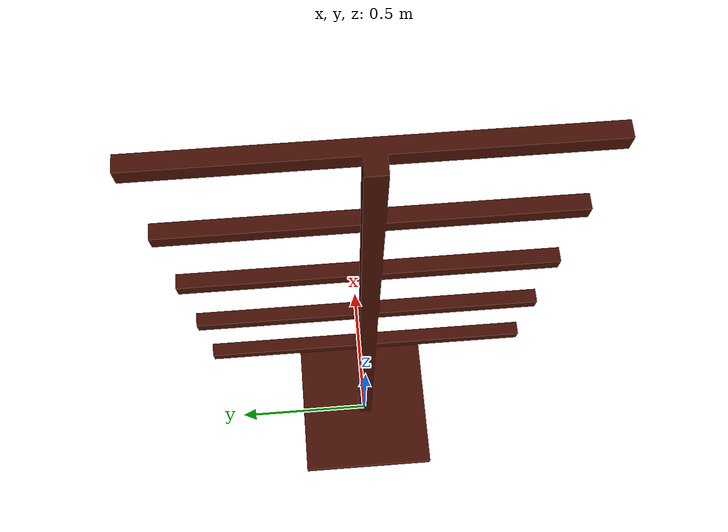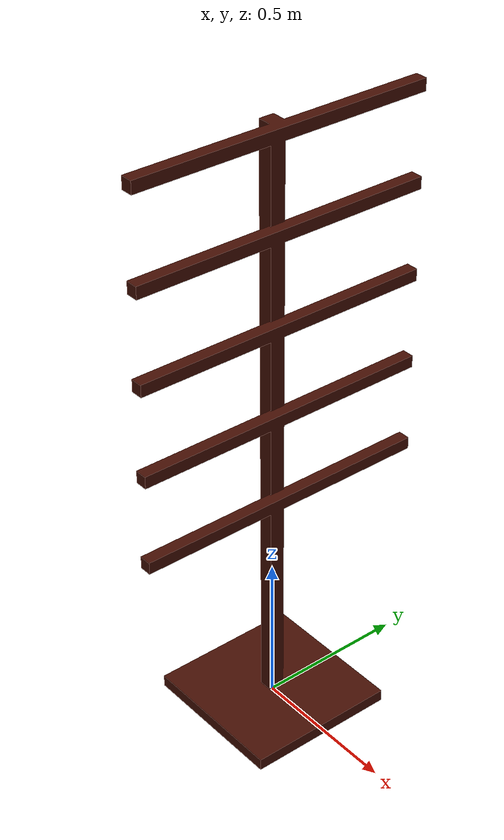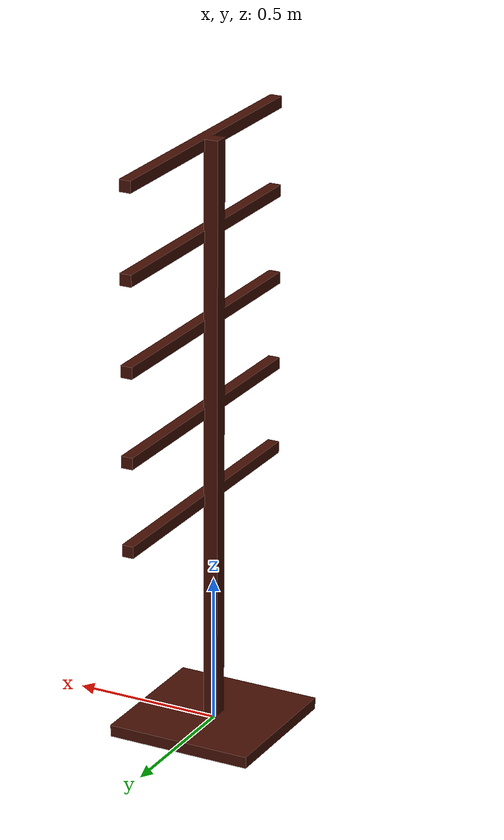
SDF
<sdf version="1.6">
 <world name="2D_1_1_3_0">
  <light name="sun" type="directional">
   <pose>0 0 10 0 -0 0</pose>
   <diffuse>1 1 1 1</diffuse>
   <specular>0.2 0.2 0.2 1</specular>
   <attenuation>
    <range>1000</range>
    <constant>0.9</constant>
    <linear>0.01</linear>
    <quadratic>0.001</quadratic>
   </attenuation>
   <direction>-0.5 -0.5 -1</direction>
  </light>
  <physics name="default_physics" default="0" type="ode">
   <max_step_size>0.001</max_step_size>
   <real_time_factor>1</real_time_factor>
   <real_time_update_rate>1000</real_time_update_rate>
  </physics>
  <scene><ambient>1 1 1 1</ambient><background>0.0 0.0 0.0 1</background><shadows>0</shadows></scene>
  <spherical_coordinates>
   <surface_model>EARTH_WGS84</surface_model>
   <latitude_deg>0.00</latitude_deg>
   <longitude_deg>0.00</longitude_deg>
   <elevation>0</elevation>
   <heading_deg>0</heading_deg>
  </spherical_coordinates>
  <gravity>0 0 -9.8</gravity>
  <magnetic_field>6e-06 2.3e-05 -4.2e-05</magnetic_field>
  <atmosphere type="adiabatic"/>
  <model name="digital_tree">
   <link name="digital_tree_link">
    <inertial>
     <mass>50</mass>
     <inertia><ixx>1000</ixx><ixy>1000</ixy><ixz>1000</ixz><iyy>1000</iyy><iyz>1000</iyz><izz>1000</izz></inertia>
    </inertial>
    <collision name="digital_tree_link_collision">
     <geometry>
      <mesh>
       <scale>1 1 1</scale>
       <uri>file:///media/mirko/Volume/GITHUB/Positioning_MetroAgriFor2024/models/digital_tree/meshes/digital_tree.dae</uri>
      </mesh>
     </geometry>
    </collision>
    <visual name="digital_tree_link_visual">
     <geometry>
      <mesh>
       <scale>1 1 1</scale>
       <uri>file:///media/mirko/Volume/GITHUB/Positioning_MetroAgriFor2024/models/digital_tree/meshes/digital_tree.dae</uri>
      </mesh>
     </geometry>
    </visual>
   </link>
   <static>1</static>
   <pose>0 0 0 0 0 1.57</pose>
  </model>
  <model name="1">
   <link name="1_link">
    <inertial>
     <mass>0.0055846177370030585</mass>
     <inertia><ixx>1000</ixx><ixy>1000</ixy><ixz>1000</ixz><iyy>1000</iyy><iyz>1000</iyz><izz>1000</izz></inertia>
    </inertial>
    <collision name="1_link_collision">
     <geometry>
      <mesh>
       <scale>1 1 1</scale>
       <size>0.04845 0.049159999999999995 0.0418</size>
       <uri>file:///media/mirko/Volume/GITHUB/Positioning_MetroAgriFor2024/models/apple/meshes/apple.dae</uri>
      </mesh>
     </geometry>
    </collision>
    <visual name="1_link_visual">
     <geometry>
      <mesh>
       <size>0.04845 0.049159999999999995 0.0418</size>
       <scale>1 1 1</scale>
       <uri>file:///media/mirko/Volume/GITHUB/Positioning_MetroAgriFor2024/models/apple/meshes/apple.dae</uri>
      </mesh>
     </geometry>
     <material>
      <ambient>0.6549019607843137 0.43529411764705883 0.33725490196078434 1.0</ambient>
      <diffuse>0.7 0.9 0 1</diffuse>
      <specular>0.2 0.2 0.2 64</specular>
      <emissive>0.1 0 0.1 1</emissive>
     </material>
    </visual>
   </link>
   <static>1</static>
  </model>
  <model name="2">
   <link name="2_link">
    <inertial>
     <mass>0.005149959225280326</mass>
     <inertia><ixx>1000</ixx><ixy>1000</ixy><ixz>1000</ixz><iyy>1000</iyy><iyz>1000</iyz><izz>1000</izz></inertia>
    </inertial>
    <collision name="2_link_collision">
     <geometry>
      <mesh>
       <scale>1 1 1</scale>
       <size>0.047310000000000005 0.04722 0.04008</size>
       <uri>file:///media/mirko/Volume/GITHUB/Positioning_MetroAgriFor2024/models/apple/meshes/apple.dae</uri>
      </mesh>
     </geometry>
    </collision>
    <visual name="2_link_visual">
     <geometry>
      <mesh>
       <size>0.047310000000000005 0.04722 0.04008</size>
       <scale>1 1 1</scale>
       <uri>file:///media/mirko/Volume/GITHUB/Positioning_MetroAgriFor2024/models/apple/meshes/apple.dae</uri>
      </mesh>
     </geometry>
     <material>
      <ambient>0.6470588235294118 0.5254901960784314 0.34509803921568627 1.0</ambient>
      <diffuse>0.7 0.9 0 1</diffuse>
      <specular>0.2 0.2 0.2 64</specular>
      <emissive>0.1 0 0.1 1</emissive>
     </material>
    </visual>
   </link>
   <static>1</static>
  </model>
  <model name="3">
   <link name="3_link">
    <inertial>
     <mass>0.005616625891946992</mass>
     <inertia><ixx>1000</ixx><ixy>1000</ixy><ixz>1000</ixz><iyy>1000</iyy><iyz>1000</iyz><izz>1000</izz></inertia>
    </inertial>
    <collision name="3_link_collision">
     <geometry>
      <mesh>
       <scale>1 1 1</scale>
       <size>0.047920000000000004 0.046560000000000004 0.04639</size>
       <uri>file:///media/mirko/Volume/GITHUB/Positioning_MetroAgriFor2024/models/apple/meshes/apple.dae</uri>
      </mesh>
     </geometry>
    </collision>
    <visual name="3_link_visual">
     <geometry>
      <mesh>
       <size>0.047920000000000004 0.046560000000000004 0.04639</size>
       <scale>1 1 1</scale>
       <uri>file:///media/mirko/Volume/GITHUB/Positioning_MetroAgriFor2024/models/apple/meshes/apple.dae</uri>
      </mesh>
     </geometry>
     <material>
      <ambient>0.7156862745098039 0.6588235294117647 0.3941176470588235 1.0</ambient>
      <diffuse>0.7 0.9 0 1</diffuse>
      <specular>0.2 0.2 0.2 64</specular>
      <emissive>0.1 0 0.1 1</emissive>
     </material>
    </visual>
   </link>
   <static>1</static>
  </model>
  <model name="4">
   <link name="4_link">
    <inertial>
     <mass>0.006750805300713556</mass>
     <inertia><ixx>1000</ixx><ixy>1000</ixy><ixz>1000</ixz><iyy>1000</iyy><iyz>1000</iyz><izz>1000</izz></inertia>
    </inertial>
    <collision name="4_link_collision">
     <geometry>
      <mesh>
       <scale>1 1 1</scale>
       <size>0.05074 0.051590000000000004 0.045329999999999995</size>
       <uri>file:///media/mirko/Volume/GITHUB/Positioning_MetroAgriFor2024/models/apple/meshes/apple.dae</uri>
      </mesh>
     </geometry>
    </collision>
    <visual name="4_link_visual">
     <geometry>
      <mesh>
       <size>0.05074 0.051590000000000004 0.045329999999999995</size>
       <scale>1 1 1</scale>
       <uri>file:///media/mirko/Volume/GITHUB/Positioning_MetroAgriFor2024/models/apple/meshes/apple.dae</uri>
      </mesh>
     </geometry>
     <material>
      <ambient>0.6431372549019608 0.16862745098039217 0.28627450980392155 1.0</ambient>
      <diffuse>0.7 0.9 0 1</diffuse>
      <specular>0.2 0.2 0.2 64</specular>
      <emissive>0.1 0 0.1 1</emissive>
     </material>
    </visual>
   </link>
   <static>1</static>
  </model>
  <model name="5">
   <link name="5_link">
    <inertial>
     <mass>0.008412976554536187</mass>
     <inertia><ixx>1000</ixx><ixy>1000</ixy><ixz>1000</ixz><iyy>1000</iyy><iyz>1000</iyz><izz>1000</izz></inertia>
    </inertial>
    <collision name="5_link_collision">
     <geometry>
      <mesh>
       <scale>1 1 1</scale>
       <size>0.0533 0.05274 0.055990000000000005</size>
       <uri>file:///media/mirko/Volume/GITHUB/Positioning_MetroAgriFor2024/models/apple/meshes/apple.dae</uri>
      </mesh>
     </geometry>
    </collision>
    <visual name="5_link_visual">
     <geometry>
      <mesh>
       <size>0.0533 0.05274 0.055990000000000005</size>
       <scale>1 1 1</scale>
       <uri>file:///media/mirko/Volume/GITHUB/Positioning_MetroAgriFor2024/models/apple/meshes/apple.dae</uri>
      </mesh>
     </geometry>
     <material>
      <ambient>0.6627450980392157 0.5901960784313726 0.4117647058823529 1.0</ambient>
      <diffuse>0.7 0.9 0 1</diffuse>
      <specular>0.2 0.2 0.2 64</specular>
      <emissive>0.1 0 0.1 1</emissive>
     </material>
    </visual>
   </link>
   <static>1</static>
  </model>
  <model name="6">
   <link name="6_link">
    <inertial>
     <mass>0.007805096839959225</mass>
     <inertia><ixx>1000</ixx><ixy>1000</ixy><ixz>1000</ixz><iyy>1000</iyy><iyz>1000</iyz><izz>1000</izz></inertia>
    </inertial>
    <collision name="6_link_collision">
     <geometry>
      <mesh>
       <scale>1 1 1</scale>
       <size>0.053700000000000005 0.05374 0.05364</size>
       <uri>file:///media/mirko/Volume/GITHUB/Positioning_MetroAgriFor2024/models/apple/meshes/apple.dae</uri>
      </mesh>
     </geometry>
    </collision>
    <visual name="6_link_visual">
     <geometry>
      <mesh>
       <size>0.053700000000000005 0.05374 0.05364</size>
       <scale>1 1 1</scale>
       <uri>file:///media/mirko/Volume/GITHUB/Positioning_MetroAgriFor2024/models/apple/meshes/apple.dae</uri>
      </mesh>
     </geometry>
     <material>
      <ambient>0.6627450980392157 0.25098039215686274 0.37450980392156863 1.0</ambient>
      <diffuse>0.7 0.9 0 1</diffuse>
      <specular>0.2 0.2 0.2 64</specular>
      <emissive>0.1 0 0.1 1</emissive>
     </material>
    </visual>
   </link>
   <static>1</static>
  </model>
  <model name="7">
   <link name="7_link">
    <inertial>
     <mass>0.008013180428134557</mass>
     <inertia><ixx>1000</ixx><ixy>1000</ixy><ixz>1000</ixz><iyy>1000</iyy><iyz>1000</iyz><izz>1000</izz></inertia>
    </inertial>
    <collision name="7_link_collision">
     <geometry>
      <mesh>
       <scale>1 1 1</scale>
       <size>0.05568 0.055689999999999996 0.05054</size>
       <uri>file:///media/mirko/Volume/GITHUB/Positioning_MetroAgriFor2024/models/apple/meshes/apple.dae</uri>
      </mesh>
     </geometry>
    </collision>
    <visual name="7_link_visual">
     <geometry>
      <mesh>
       <size>0.05568 0.055689999999999996 0.05054</size>
       <scale>1 1 1</scale>
       <uri>file:///media/mirko/Volume/GITHUB/Positioning_MetroAgriFor2024/models/apple/meshes/apple.dae</uri>
      </mesh>
     </geometry>
     <material>
      <ambient>0.7254901960784313 0.4117647058823529 0.37254901960784315 1.0</ambient>
      <diffuse>0.7 0.9 0 1</diffuse>
      <specular>0.2 0.2 0.2 64</specular>
      <emissive>0.1 0 0.1 1</emissive>
     </material>
    </visual>
   </link>
   <static>1</static>
  </model>
  <model name="8">
   <link name="8_link">
    <inertial>
     <mass>0.007575056065239551</mass>
     <inertia><ixx>1000</ixx><ixy>1000</ixy><ixz>1000</ixz><iyy>1000</iyy><iyz>1000</iyz><izz>1000</izz></inertia>
    </inertial>
    <collision name="8_link_collision">
     <geometry>
      <mesh>
       <scale>1 1 1</scale>
       <size>0.055549999999999995 0.05374 0.04924</size>
       <uri>file:///media/mirko/Volume/GITHUB/Positioning_MetroAgriFor2024/models/apple/meshes/apple.dae</uri>
      </mesh>
     </geometry>
    </collision>
    <visual name="8_link_visual">
     <geometry>
      <mesh>
       <size>0.055549999999999995 0.05374 0.04924</size>
       <scale>1 1 1</scale>
       <uri>file:///media/mirko/Volume/GITHUB/Positioning_MetroAgriFor2024/models/apple/meshes/apple.dae</uri>
      </mesh>
     </geometry>
     <material>
      <ambient>0.5627450980392157 0.31176470588235294 0.33137254901960783 1.0</ambient>
      <diffuse>0.7 0.9 0 1</diffuse>
      <specular>0.2 0.2 0.2 64</specular>
      <emissive>0.1 0 0.1 1</emissive>
     </material>
    </visual>
   </link>
   <static>1</static>
  </model>
  <model name="9">
   <link name="9_link">
    <inertial>
     <mass>0.007217268093781855</mass>
     <inertia><ixx>1000</ixx><ixy>1000</ixy><ixz>1000</ixz><iyy>1000</iyy><iyz>1000</iyz><izz>1000</izz></inertia>
    </inertial>
    <collision name="9_link_collision">
     <geometry>
      <mesh>
       <scale>1 1 1</scale>
       <size>0.0508 0.05176 0.05107</size>
       <uri>file:///media/mirko/Volume/GITHUB/Positioning_MetroAgriFor2024/models/apple/meshes/apple.dae</uri>
      </mesh>
     </geometry>
    </collision>
    <visual name="9_link_visual">
     <geometry>
      <mesh>
       <size>0.0508 0.05176 0.05107</size>
       <scale>1 1 1</scale>
       <uri>file:///media/mirko/Volume/GITHUB/Positioning_MetroAgriFor2024/models/apple/meshes/apple.dae</uri>
      </mesh>
     </geometry>
     <material>
      <ambient>0.6254901960784314 0.4549019607843137 0.34509803921568627 1.0</ambient>
      <diffuse>0.7 0.9 0 1</diffuse>
      <specular>0.2 0.2 0.2 64</specular>
      <emissive>0.1 0 0.1 1</emissive>
     </material>
    </visual>
   </link>
   <static>1</static>
  </model>
  <model name="10">
   <link name="10_link">
    <inertial>
     <mass>0.005653802242609582</mass>
     <inertia><ixx>1000</ixx><ixy>1000</ixy><ixz>1000</ixz><iyy>1000</iyy><iyz>1000</iyz><izz>1000</izz></inertia>
    </inertial>
    <collision name="10_link_collision">
     <geometry>
      <mesh>
       <scale>1 1 1</scale>
       <size>0.049530000000000005 0.047049999999999995 0.04403</size>
       <uri>file:///media/mirko/Volume/GITHUB/Positioning_MetroAgriFor2024/models/apple/meshes/apple.dae</uri>
      </mesh>
     </geometry>
    </collision>
    <visual name="10_link_visual">
     <geometry>
      <mesh>
       <size>0.049530000000000005 0.047049999999999995 0.04403</size>
       <scale>1 1 1</scale>
       <uri>file:///media/mirko/Volume/GITHUB/Positioning_MetroAgriFor2024/models/apple/meshes/apple.dae</uri>
      </mesh>
     </geometry>
     <material>
      <ambient>0.5568627450980392 0.49019607843137253 0.3176470588235294 1.0</ambient>
      <diffuse>0.7 0.9 0 1</diffuse>
      <specular>0.2 0.2 0.2 64</specular>
      <emissive>0.1 0 0.1 1</emissive>
     </material>
    </visual>
   </link>
   <static>1</static>
  </model>
  <model name="11">
   <link name="11_link">
    <inertial>
     <mass>0.0056185728848114165</mass>
     <inertia><ixx>1000</ixx><ixy>1000</ixy><ixz>1000</ixz><iyy>1000</iyy><iyz>1000</iyz><izz>1000</izz></inertia>
    </inertial>
    <collision name="11_link_collision">
     <geometry>
      <mesh>
       <scale>1 1 1</scale>
       <size>0.047740000000000005 0.04786 0.04485</size>
       <uri>file:///media/mirko/Volume/GITHUB/Positioning_MetroAgriFor2024/models/apple/meshes/apple.dae</uri>
      </mesh>
     </geometry>
    </collision>
    <visual name="11_link_visual">
     <geometry>
      <mesh>
       <size>0.047740000000000005 0.04786 0.04485</size>
       <scale>1 1 1</scale>
       <uri>file:///media/mirko/Volume/GITHUB/Positioning_MetroAgriFor2024/models/apple/meshes/apple.dae</uri>
      </mesh>
     </geometry>
     <material>
      <ambient>0.49215686274509807 0.4549019607843137 0.32941176470588235 1.0</ambient>
      <diffuse>0.7 0.9 0 1</diffuse>
      <specular>0.2 0.2 0.2 64</specular>
      <emissive>0.1 0 0.1 1</emissive>
     </material>
    </visual>
   </link>
   <static>1</static>
  </model>
  <model name="12">
   <link name="12_link">
    <inertial>
     <mass>0.006541100917431192</mass>
     <inertia><ixx>1000</ixx><ixy>1000</ixy><ixz>1000</ixz><iyy>1000</iyy><iyz>1000</iyz><izz>1000</izz></inertia>
    </inertial>
    <collision name="12_link_collision">
     <geometry>
      <mesh>
       <scale>1 1 1</scale>
       <size>0.052950000000000004 0.05125 0.04795</size>
       <uri>file:///media/mirko/Volume/GITHUB/Positioning_MetroAgriFor2024/models/apple/meshes/apple.dae</uri>
      </mesh>
     </geometry>
    </collision>
    <visual name="12_link_visual">
     <geometry>
      <mesh>
       <size>0.052950000000000004 0.05125 0.04795</size>
       <scale>1 1 1</scale>
       <uri>file:///media/mirko/Volume/GITHUB/Positioning_MetroAgriFor2024/models/apple/meshes/apple.dae</uri>
      </mesh>
     </geometry>
     <material>
      <ambient>0.6215686274509804 0.11372549019607843 0.24705882352941178 1.0</ambient>
      <diffuse>0.7 0.9 0 1</diffuse>
      <specular>0.2 0.2 0.2 64</specular>
      <emissive>0.1 0 0.1 1</emissive>
     </material>
    </visual>
   </link>
   <static>1</static>
  </model>
  <model name="13">
   <link name="13_link">
    <inertial>
     <mass>0.007178114169215087</mass>
     <inertia><ixx>1000</ixx><ixy>1000</ixy><ixz>1000</ixz><iyy>1000</iyy><iyz>1000</iyz><izz>1000</izz></inertia>
    </inertial>
    <collision name="13_link_collision">
     <geometry>
      <mesh>
       <scale>1 1 1</scale>
       <size>0.05348 0.048310000000000006 0.04739</size>
       <uri>file:///media/mirko/Volume/GITHUB/Positioning_MetroAgriFor2024/models/apple/meshes/apple.dae</uri>
      </mesh>
     </geometry>
    </collision>
    <visual name="13_link_visual">
     <geometry>
      <mesh>
       <size>0.05348 0.048310000000000006 0.04739</size>
       <scale>1 1 1</scale>
       <uri>file:///media/mirko/Volume/GITHUB/Positioning_MetroAgriFor2024/models/apple/meshes/apple.dae</uri>
      </mesh>
     </geometry>
     <material>
      <ambient>0.6470588235294118 0.25098039215686274 0.25098039215686274 1.0</ambient>
      <diffuse>0.7 0.9 0 1</diffuse>
      <specular>0.2 0.2 0.2 64</specular>
      <emissive>0.1 0 0.1 1</emissive>
     </material>
    </visual>
   </link>
   <static>1</static>
  </model>
  <model name="14">
   <link name="14_link">
    <inertial>
     <mass>0.004895820591233435</mass>
     <inertia><ixx>1000</ixx><ixy>1000</ixy><ixz>1000</ixz><iyy>1000</iyy><iyz>1000</iyz><izz>1000</izz></inertia>
    </inertial>
    <collision name="14_link_collision">
     <geometry>
      <mesh>
       <scale>1 1 1</scale>
       <size>0.0465 0.0464 0.04376</size>
       <uri>file:///media/mirko/Volume/GITHUB/Positioning_MetroAgriFor2024/models/apple/meshes/apple.dae</uri>
      </mesh>
     </geometry>
    </collision>
    <visual name="14_link_visual">
     <geometry>
      <mesh>
       <size>0.0465 0.0464 0.04376</size>
       <scale>1 1 1</scale>
       <uri>file:///media/mirko/Volume/GITHUB/Positioning_MetroAgriFor2024/models/apple/meshes/apple.dae</uri>
      </mesh>
     </geometry>
     <material>
      <ambient>0.6274509803921569 0.19411764705882353 0.17647058823529413 1.0</ambient>
      <diffuse>0.7 0.9 0 1</diffuse>
      <specular>0.2 0.2 0.2 64</specular>
      <emissive>0.1 0 0.1 1</emissive>
     </material>
    </visual>
   </link>
   <static>1</static>
  </model>
  <model name="15">
   <link name="15_link">
    <inertial>
     <mass>0.005861753312945973</mass>
     <inertia><ixx>1000</ixx><ixy>1000</ixy><ixz>1000</ixz><iyy>1000</iyy><iyz>1000</iyz><izz>1000</izz></inertia>
    </inertial>
    <collision name="15_link_collision">
     <geometry>
      <mesh>
       <scale>1 1 1</scale>
       <size>0.04747 0.0475 0.04828</size>
       <uri>file:///media/mirko/Volume/GITHUB/Positioning_MetroAgriFor2024/models/apple/meshes/apple.dae</uri>
      </mesh>
     </geometry>
    </collision>
    <visual name="15_link_visual">
     <geometry>
      <mesh>
       <size>0.04747 0.0475 0.04828</size>
       <scale>1 1 1</scale>
       <uri>file:///media/mirko/Volume/GITHUB/Positioning_MetroAgriFor2024/models/apple/meshes/apple.dae</uri>
      </mesh>
     </geometry>
     <material>
      <ambient>0.6235294117647059 0.49411764705882355 0.30196078431372547 1.0</ambient>
      <diffuse>0.7 0.9 0 1</diffuse>
      <specular>0.2 0.2 0.2 64</specular>
      <emissive>0.1 0 0.1 1</emissive>
     </material>
    </visual>
   </link>
   <static>1</static>
  </model>
 </world>
</sdf>
